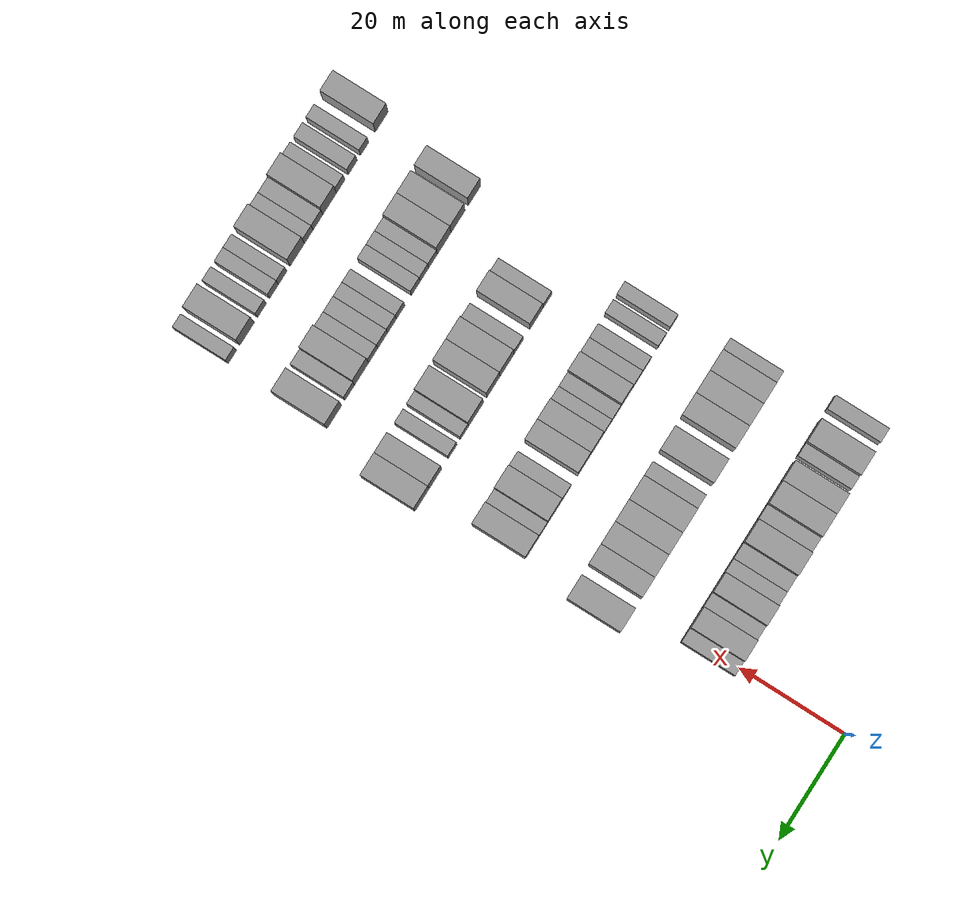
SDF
<sdf version="1.6">
 <world name="default">
  <model name="building_76">
   <static>1</static>
   <pose>25.0000 -43.3283 0 0.000000 0.000000 0.000000</pose>
   <link name="link">
    <pose>0 0 3.00 0 0 0</pose>
    <collision name="collision"><geometry><box><size>10.0000 2.6255 6.0000</size></box></geometry></collision>
    <visual name="visual">
     <cast_shadows>0</cast_shadows>
     <geometry><box><size>10.0000 2.6255 6.0000</size></box></geometry>
     <material>
      <script>
       <uri>model://grey_wall/materials/scripts</uri>
       <uri>model://grey_wall/materials/textures</uri>
       <name>vrc/grey_wall</name>
      </script>
     </material>
    </visual>
   </link>
  </model>
  <model name="building_77">
   <static>1</static>
   <pose>25.0000 -37.8371 0 0.000000 0.000000 0.000000</pose>
   <link name="link">
    <pose>0 0 4.50 0 0 0</pose>
    <collision name="collision"><geometry><box><size>10.0000 4.3570 9.0000</size></box></geometry></collision>
    <visual name="visual">
     <cast_shadows>0</cast_shadows>
     <geometry><box><size>10.0000 4.3570 9.0000</size></box></geometry>
     <material>
      <script>
       <uri>model://grey_wall/materials/scripts</uri>
       <uri>model://grey_wall/materials/textures</uri>
       <name>vrc/grey_wall</name>
      </script>
     </material>
    </visual>
   </link>
  </model>
  <model name="building_78">
   <static>1</static>
   <pose>25.0000 -34.4365 0 0.000000 0.000000 0.000000</pose>
   <link name="link">
    <pose>0 0 3.00 0 0 0</pose>
    <collision name="collision"><geometry><box><size>10.0000 2.4443 6.0000</size></box></geometry></collision>
    <visual name="visual">
     <cast_shadows>0</cast_shadows>
     <geometry><box><size>10.0000 2.4443 6.0000</size></box></geometry>
     <material>
      <script>
       <uri>model://grey_wall/materials/scripts</uri>
       <uri>model://grey_wall/materials/textures</uri>
       <name>vrc/grey_wall</name>
      </script>
     </material>
    </visual>
   </link>
  </model>
  <model name="building_79">
   <static>1</static>
   <pose>25.0000 -30.3261 0 0.000000 0.000000 0.000000</pose>
   <link name="link">
    <pose>0 0 4.50 0 0 0</pose>
    <collision name="collision"><geometry><box><size>10.0000 3.7765 9.0000</size></box></geometry></collision>
    <visual name="visual">
     <cast_shadows>0</cast_shadows>
     <geometry><box><size>10.0000 3.7765 9.0000</size></box></geometry>
     <material>
      <script>
       <uri>model://grey_wall/materials/scripts</uri>
       <uri>model://grey_wall/materials/textures</uri>
       <name>vrc/grey_wall</name>
      </script>
     </material>
    </visual>
   </link>
  </model>
  <model name="building_80">
   <static>1</static>
   <pose>25.0000 -26.3080 0 0.000000 0.000000 0.000000</pose>
   <link name="link">
    <pose>0 0 4.50 0 0 0</pose>
    <collision name="collision"><geometry><box><size>10.0000 4.2597 9.0000</size></box></geometry></collision>
    <visual name="visual">
     <cast_shadows>0</cast_shadows>
     <geometry><box><size>10.0000 4.2597 9.0000</size></box></geometry>
     <material>
      <script>
       <uri>model://grey_wall/materials/scripts</uri>
       <uri>model://grey_wall/materials/textures</uri>
       <name>vrc/grey_wall</name>
      </script>
     </material>
    </visual>
   </link>
  </model>
  <model name="building_81">
   <static>1</static>
   <pose>25.0000 -22.7235 0 0.000000 0.000000 0.000000</pose>
   <link name="link">
    <pose>0 0 3.00 0 0 0</pose>
    <collision name="collision"><geometry><box><size>10.0000 2.9092 6.0000</size></box></geometry></collision>
    <visual name="visual">
     <cast_shadows>0</cast_shadows>
     <geometry><box><size>10.0000 2.9092 6.0000</size></box></geometry>
     <material>
      <script>
       <uri>model://grey_wall/materials/scripts</uri>
       <uri>model://grey_wall/materials/textures</uri>
       <name>vrc/grey_wall</name>
      </script>
     </material>
    </visual>
   </link>
  </model>
  <model name="building_82">
   <static>1</static>
   <pose>25.0000 -19.1239 0 0.000000 0.000000 0.000000</pose>
   <link name="link">
    <pose>0 0 4.50 0 0 0</pose>
    <collision name="collision"><geometry><box><size>10.0000 4.2902 9.0000</size></box></geometry></collision>
    <visual name="visual">
     <cast_shadows>0</cast_shadows>
     <geometry><box><size>10.0000 4.2902 9.0000</size></box></geometry>
     <material>
      <script>
       <uri>model://grey_wall/materials/scripts</uri>
       <uri>model://grey_wall/materials/textures</uri>
       <name>vrc/grey_wall</name>
      </script>
     </material>
    </visual>
   </link>
  </model>
  <model name="building_83">
   <static>1</static>
   <pose>25.0000 -15.4917 0 0.000000 0.000000 0.000000</pose>
   <link name="link">
    <pose>0 0 3.00 0 0 0</pose>
    <collision name="collision"><geometry><box><size>10.0000 2.9742 6.0000</size></box></geometry></collision>
    <visual name="visual">
     <cast_shadows>0</cast_shadows>
     <geometry><box><size>10.0000 2.9742 6.0000</size></box></geometry>
     <material>
      <script>
       <uri>model://grey_wall/materials/scripts</uri>
       <uri>model://grey_wall/materials/textures</uri>
       <name>vrc/grey_wall</name>
      </script>
     </material>
    </visual>
   </link>
  </model>
  <model name="building_84">
   <static>1</static>
   <pose>25.0000 -12.6764 0 0.000000 0.000000 0.000000</pose>
   <link name="link">
    <pose>0 0 3.00 0 0 0</pose>
    <collision name="collision"><geometry><box><size>10.0000 2.6565 6.0000</size></box></geometry></collision>
    <visual name="visual">
     <cast_shadows>0</cast_shadows>
     <geometry><box><size>10.0000 2.6565 6.0000</size></box></geometry>
     <material>
      <script>
       <uri>model://grey_wall/materials/scripts</uri>
       <uri>model://grey_wall/materials/textures</uri>
       <name>vrc/grey_wall</name>
      </script>
     </material>
    </visual>
   </link>
  </model>
  <model name="building_85">
   <static>1</static>
   <pose>25.0000 -9.4962 0 0.000000 0.000000 0.000000</pose>
   <link name="link">
    <pose>0 0 4.50 0 0 0</pose>
    <collision name="collision"><geometry><box><size>10.0000 3.7039 9.0000</size></box></geometry></collision>
    <visual name="visual">
     <cast_shadows>0</cast_shadows>
     <geometry><box><size>10.0000 3.7039 9.0000</size></box></geometry>
     <material>
      <script>
       <uri>model://grey_wall/materials/scripts</uri>
       <uri>model://grey_wall/materials/textures</uri>
       <name>vrc/grey_wall</name>
      </script>
     </material>
    </visual>
   </link>
  </model>
  <model name="building_86">
   <static>1</static>
   <pose>25.0000 -6.2810 0 0.000000 0.000000 0.000000</pose>
   <link name="link">
    <pose>0 0 3.00 0 0 0</pose>
    <collision name="collision"><geometry><box><size>10.0000 2.7266 6.0000</size></box></geometry></collision>
    <visual name="visual">
     <cast_shadows>0</cast_shadows>
     <geometry><box><size>10.0000 2.7266 6.0000</size></box></geometry>
     <material>
      <script>
       <uri>model://grey_wall/materials/scripts</uri>
       <uri>model://grey_wall/materials/textures</uri>
       <name>vrc/grey_wall</name>
      </script>
     </material>
    </visual>
   </link>
  </model>
  <model name="building_87">
   <static>1</static>
   <pose>25.0000 -2.9673 0 0.000000 0.000000 0.000000</pose>
   <link name="link">
    <pose>0 0 4.50 0 0 0</pose>
    <collision name="collision"><geometry><box><size>10.0000 3.9007 9.0000</size></box></geometry></collision>
    <visual name="visual">
     <cast_shadows>0</cast_shadows>
     <geometry><box><size>10.0000 3.9007 9.0000</size></box></geometry>
     <material>
      <script>
       <uri>model://grey_wall/materials/scripts</uri>
       <uri>model://grey_wall/materials/textures</uri>
       <name>vrc/grey_wall</name>
      </script>
     </material>
    </visual>
   </link>
  </model>
  <model name="building_88">
   <static>1</static>
   <pose>25.0000 0.2975 0 0.000000 0.000000 0.000000</pose>
   <link name="link">
    <pose>0 0 3.00 0 0 0</pose>
    <collision name="collision"><geometry><box><size>10.0000 2.6289 6.0000</size></box></geometry></collision>
    <visual name="visual">
     <cast_shadows>0</cast_shadows>
     <geometry><box><size>10.0000 2.6289 6.0000</size></box></geometry>
     <material>
      <script>
       <uri>model://grey_wall/materials/scripts</uri>
       <uri>model://grey_wall/materials/textures</uri>
       <name>vrc/grey_wall</name>
      </script>
     </material>
    </visual>
   </link>
  </model>
  <model name="building_228">
   <static>1</static>
   <pose>44.0000 -42.2456 0 0.000000 0.000000 0.000000</pose>
   <link name="link">
    <pose>0 0 3.00 0 0 0</pose>
    <collision name="collision"><geometry><box><size>10.0000 2.4268 6.0000</size></box></geometry></collision>
    <visual name="visual">
     <cast_shadows>0</cast_shadows>
     <geometry><box><size>10.0000 2.4268 6.0000</size></box></geometry>
     <material>
      <script>
       <uri>model://grey_wall/materials/scripts</uri>
       <uri>model://grey_wall/materials/textures</uri>
       <name>vrc/grey_wall</name>
      </script>
     </material>
    </visual>
   </link>
  </model>
  <model name="building_229">
   <static>1</static>
   <pose>44.0000 -39.0717 0 0.000000 0.000000 0.000000</pose>
   <link name="link">
    <pose>0 0 4.50 0 0 0</pose>
    <collision name="collision"><geometry><box><size>10.0000 3.9209 9.0000</size></box></geometry></collision>
    <visual name="visual">
     <cast_shadows>0</cast_shadows>
     <geometry><box><size>10.0000 3.9209 9.0000</size></box></geometry>
     <material>
      <script>
       <uri>model://grey_wall/materials/scripts</uri>
       <uri>model://grey_wall/materials/textures</uri>
       <name>vrc/grey_wall</name>
      </script>
     </material>
    </visual>
   </link>
  </model>
  <model name="building_230">
   <static>1</static>
   <pose>44.0000 -35.0303 0 0.000000 0.000000 0.000000</pose>
   <link name="link">
    <pose>0 0 4.50 0 0 0</pose>
    <collision name="collision"><geometry><box><size>10.0000 4.1619 9.0000</size></box></geometry></collision>
    <visual name="visual">
     <cast_shadows>0</cast_shadows>
     <geometry><box><size>10.0000 4.1619 9.0000</size></box></geometry>
     <material>
      <script>
       <uri>model://grey_wall/materials/scripts</uri>
       <uri>model://grey_wall/materials/textures</uri>
       <name>vrc/grey_wall</name>
      </script>
     </material>
    </visual>
   </link>
  </model>
  <model name="building_231">
   <static>1</static>
   <pose>44.0000 -30.8508 0 0.000000 0.000000 0.000000</pose>
   <link name="link">
    <pose>0 0 4.50 0 0 0</pose>
    <collision name="collision"><geometry><box><size>10.0000 4.1972 9.0000</size></box></geometry></collision>
    <visual name="visual">
     <cast_shadows>0</cast_shadows>
     <geometry><box><size>10.0000 4.1972 9.0000</size></box></geometry>
     <material>
      <script>
       <uri>model://grey_wall/materials/scripts</uri>
       <uri>model://grey_wall/materials/textures</uri>
       <name>vrc/grey_wall</name>
      </script>
     </material>
    </visual>
   </link>
  </model>
  <model name="building_232">
   <static>1</static>
   <pose>44.0000 -24.5054 0 0.000000 0.000000 0.000000</pose>
   <link name="link">
    <pose>0 0 4.50 0 0 0</pose>
    <collision name="collision"><geometry><box><size>10.0000 4.4937 9.0000</size></box></geometry></collision>
    <visual name="visual">
     <cast_shadows>0</cast_shadows>
     <geometry><box><size>10.0000 4.4937 9.0000</size></box></geometry>
     <material>
      <script>
       <uri>model://grey_wall/materials/scripts</uri>
       <uri>model://grey_wall/materials/textures</uri>
       <name>vrc/grey_wall</name>
      </script>
     </material>
    </visual>
   </link>
  </model>
  <model name="building_233">
   <static>1</static>
   <pose>44.0000 -18.8831 0 0.000000 0.000000 0.000000</pose>
   <link name="link">
    <pose>0 0 3.00 0 0 0</pose>
    <collision name="collision"><geometry><box><size>10.0000 2.7508 6.0000</size></box></geometry></collision>
    <visual name="visual">
     <cast_shadows>0</cast_shadows>
     <geometry><box><size>10.0000 2.7508 6.0000</size></box></geometry>
     <material>
      <script>
       <uri>model://grey_wall/materials/scripts</uri>
       <uri>model://grey_wall/materials/textures</uri>
       <name>vrc/grey_wall</name>
      </script>
     </material>
    </visual>
   </link>
  </model>
  <model name="building_234">
   <static>1</static>
   <pose>44.0000 -15.2633 0 0.000000 0.000000 0.000000</pose>
   <link name="link">
    <pose>0 0 4.50 0 0 0</pose>
    <collision name="collision"><geometry><box><size>10.0000 4.4888 9.0000</size></box></geometry></collision>
    <visual name="visual">
     <cast_shadows>0</cast_shadows>
     <geometry><box><size>10.0000 4.4888 9.0000</size></box></geometry>
     <material>
      <script>
       <uri>model://grey_wall/materials/scripts</uri>
       <uri>model://grey_wall/materials/textures</uri>
       <name>vrc/grey_wall</name>
      </script>
     </material>
    </visual>
   </link>
  </model>
  <model name="building_235">
   <static>1</static>
   <pose>44.0000 -10.9596 0 0.000000 0.000000 0.000000</pose>
   <link name="link">
    <pose>0 0 4.50 0 0 0</pose>
    <collision name="collision"><geometry><box><size>10.0000 4.1185 9.0000</size></box></geometry></collision>
    <visual name="visual">
     <cast_shadows>0</cast_shadows>
     <geometry><box><size>10.0000 4.1185 9.0000</size></box></geometry>
     <material>
      <script>
       <uri>model://grey_wall/materials/scripts</uri>
       <uri>model://grey_wall/materials/textures</uri>
       <name>vrc/grey_wall</name>
      </script>
     </material>
    </visual>
   </link>
  </model>
  <model name="building_236">
   <static>1</static>
   <pose>44.0000 -6.7970 0 0.000000 0.000000 0.000000</pose>
   <link name="link">
    <pose>0 0 4.50 0 0 0</pose>
    <collision name="collision"><geometry><box><size>10.0000 4.2067 9.0000</size></box></geometry></collision>
    <visual name="visual">
     <cast_shadows>0</cast_shadows>
     <geometry><box><size>10.0000 4.2067 9.0000</size></box></geometry>
     <material>
      <script>
       <uri>model://grey_wall/materials/scripts</uri>
       <uri>model://grey_wall/materials/textures</uri>
       <name>vrc/grey_wall</name>
      </script>
     </material>
    </visual>
   </link>
  </model>
  <model name="building_237">
   <static>1</static>
   <pose>44.0000 -2.8311 0 0.000000 0.000000 0.000000</pose>
   <link name="link">
    <pose>0 0 4.50 0 0 0</pose>
    <collision name="collision"><geometry><box><size>10.0000 3.7250 9.0000</size></box></geometry></collision>
    <visual name="visual">
     <cast_shadows>0</cast_shadows>
     <geometry><box><size>10.0000 3.7250 9.0000</size></box></geometry>
     <material>
      <script>
       <uri>model://grey_wall/materials/scripts</uri>
       <uri>model://grey_wall/materials/textures</uri>
       <name>vrc/grey_wall</name>
      </script>
     </material>
    </visual>
   </link>
  </model>
  <model name="building_238">
   <static>1</static>
   <pose>44.0000 3.2646 0 0.000000 0.000000 0.000000</pose>
   <link name="link">
    <pose>0 0 4.50 0 0 0</pose>
    <collision name="collision"><geometry><box><size>10.0000 4.4665 9.0000</size></box></geometry></collision>
    <visual name="visual">
     <cast_shadows>0</cast_shadows>
     <geometry><box><size>10.0000 4.4665 9.0000</size></box></geometry>
     <material>
      <script>
       <uri>model://grey_wall/materials/scripts</uri>
       <uri>model://grey_wall/materials/textures</uri>
       <name>vrc/grey_wall</name>
      </script>
     </material>
    </visual>
   </link>
  </model>
  <model name="building_401">
   <static>1</static>
   <pose>63.0000 -40.9930 0 0.000000 0.000000 0.000000</pose>
   <link name="link">
    <pose>0 0 3.00 0 0 0</pose>
    <collision name="collision"><geometry><box><size>10.0000 2.4286 6.0000</size></box></geometry></collision>
    <visual name="visual">
     <cast_shadows>0</cast_shadows>
     <geometry><box><size>10.0000 2.4286 6.0000</size></box></geometry>
     <material>
      <script>
       <uri>model://grey_wall/materials/scripts</uri>
       <uri>model://grey_wall/materials/textures</uri>
       <name>vrc/grey_wall</name>
      </script>
     </material>
    </visual>
   </link>
  </model>
  <model name="building_402">
   <static>1</static>
   <pose>63.0000 -37.5135 0 0.000000 0.000000 0.000000</pose>
   <link name="link">
    <pose>0 0 3.00 0 0 0</pose>
    <collision name="collision"><geometry><box><size>10.0000 2.5304 6.0000</size></box></geometry></collision>
    <visual name="visual">
     <cast_shadows>0</cast_shadows>
     <geometry><box><size>10.0000 2.5304 6.0000</size></box></geometry>
     <material>
      <script>
       <uri>model://grey_wall/materials/scripts</uri>
       <uri>model://grey_wall/materials/textures</uri>
       <name>vrc/grey_wall</name>
      </script>
     </material>
    </visual>
   </link>
  </model>
  <model name="building_403">
   <static>1</static>
   <pose>63.0000 -32.9405 0 0.000000 0.000000 0.000000</pose>
   <link name="link">
    <pose>0 0 3.00 0 0 0</pose>
    <collision name="collision"><geometry><box><size>10.0000 2.6156 6.0000</size></box></geometry></collision>
    <visual name="visual">
     <cast_shadows>0</cast_shadows>
     <geometry><box><size>10.0000 2.6156 6.0000</size></box></geometry>
     <material>
      <script>
       <uri>model://grey_wall/materials/scripts</uri>
       <uri>model://grey_wall/materials/textures</uri>
       <name>vrc/grey_wall</name>
      </script>
     </material>
    </visual>
   </link>
  </model>
  <model name="building_404">
   <static>1</static>
   <pose>63.0000 -30.1827 0 0.000000 0.000000 0.000000</pose>
   <link name="link">
    <pose>0 0 3.00 0 0 0</pose>
    <collision name="collision"><geometry><box><size>10.0000 2.9001 6.0000</size></box></geometry></collision>
    <visual name="visual">
     <cast_shadows>0</cast_shadows>
     <geometry><box><size>10.0000 2.9001 6.0000</size></box></geometry>
     <material>
      <script>
       <uri>model://grey_wall/materials/scripts</uri>
       <uri>model://grey_wall/materials/textures</uri>
       <name>vrc/grey_wall</name>
      </script>
     </material>
    </visual>
   </link>
  </model>
  <model name="building_405">
   <static>1</static>
   <pose>63.0000 -26.9268 0 0.000000 0.000000 0.000000</pose>
   <link name="link">
    <pose>0 0 4.50 0 0 0</pose>
    <collision name="collision"><geometry><box><size>10.0000 3.6117 9.0000</size></box></geometry></collision>
    <visual name="visual">
     <cast_shadows>0</cast_shadows>
     <geometry><box><size>10.0000 3.6117 9.0000</size></box></geometry>
     <material>
      <script>
       <uri>model://grey_wall/materials/scripts</uri>
       <uri>model://grey_wall/materials/textures</uri>
       <name>vrc/grey_wall</name>
      </script>
     </material>
    </visual>
   </link>
  </model>
  <model name="building_406">
   <static>1</static>
   <pose>63.0000 -23.7881 0 0.000000 0.000000 0.000000</pose>
   <link name="link">
    <pose>0 0 3.00 0 0 0</pose>
    <collision name="collision"><geometry><box><size>10.0000 2.6658 6.0000</size></box></geometry></collision>
    <visual name="visual">
     <cast_shadows>0</cast_shadows>
     <geometry><box><size>10.0000 2.6658 6.0000</size></box></geometry>
     <material>
      <script>
       <uri>model://grey_wall/materials/scripts</uri>
       <uri>model://grey_wall/materials/textures</uri>
       <name>vrc/grey_wall</name>
      </script>
     </material>
    </visual>
   </link>
  </model>
  <model name="building_407">
   <static>1</static>
   <pose>63.0000 -21.1831 0 0.000000 0.000000 0.000000</pose>
   <link name="link">
    <pose>0 0 3.00 0 0 0</pose>
    <collision name="collision"><geometry><box><size>10.0000 2.5441 6.0000</size></box></geometry></collision>
    <visual name="visual">
     <cast_shadows>0</cast_shadows>
     <geometry><box><size>10.0000 2.5441 6.0000</size></box></geometry>
     <material>
      <script>
       <uri>model://grey_wall/materials/scripts</uri>
       <uri>model://grey_wall/materials/textures</uri>
       <name>vrc/grey_wall</name>
      </script>
     </material>
    </visual>
   </link>
  </model>
  <model name="building_408">
   <static>1</static>
   <pose>63.0000 -17.9876 0 0.000000 0.000000 0.000000</pose>
   <link name="link">
    <pose>0 0 4.50 0 0 0</pose>
    <collision name="collision"><geometry><box><size>10.0000 3.8470 9.0000</size></box></geometry></collision>
    <visual name="visual">
     <cast_shadows>0</cast_shadows>
     <geometry><box><size>10.0000 3.8470 9.0000</size></box></geometry>
     <material>
      <script>
       <uri>model://grey_wall/materials/scripts</uri>
       <uri>model://grey_wall/materials/textures</uri>
       <name>vrc/grey_wall</name>
      </script>
     </material>
    </visual>
   </link>
  </model>
  <model name="building_409">
   <static>1</static>
   <pose>63.0000 -14.1528 0 0.000000 0.000000 0.000000</pose>
   <link name="link">
    <pose>0 0 4.50 0 0 0</pose>
    <collision name="collision"><geometry><box><size>10.0000 3.8226 9.0000</size></box></geometry></collision>
    <visual name="visual">
     <cast_shadows>0</cast_shadows>
     <geometry><box><size>10.0000 3.8226 9.0000</size></box></geometry>
     <material>
      <script>
       <uri>model://grey_wall/materials/scripts</uri>
       <uri>model://grey_wall/materials/textures</uri>
       <name>vrc/grey_wall</name>
      </script>
     </material>
    </visual>
   </link>
  </model>
  <model name="building_410">
   <static>1</static>
   <pose>63.0000 -8.8715 0 0.000000 0.000000 0.000000</pose>
   <link name="link">
    <pose>0 0 3.00 0 0 0</pose>
    <collision name="collision"><geometry><box><size>10.0000 2.7399 6.0000</size></box></geometry></collision>
    <visual name="visual">
     <cast_shadows>0</cast_shadows>
     <geometry><box><size>10.0000 2.7399 6.0000</size></box></geometry>
     <material>
      <script>
       <uri>model://grey_wall/materials/scripts</uri>
       <uri>model://grey_wall/materials/textures</uri>
       <name>vrc/grey_wall</name>
      </script>
     </material>
    </visual>
   </link>
  </model>
  <model name="building_411">
   <static>1</static>
   <pose>63.0000 -5.3590 0 0.000000 0.000000 0.000000</pose>
   <link name="link">
    <pose>0 0 4.50 0 0 0</pose>
    <collision name="collision"><geometry><box><size>10.0000 4.2850 9.0000</size></box></geometry></collision>
    <visual name="visual">
     <cast_shadows>0</cast_shadows>
     <geometry><box><size>10.0000 4.2850 9.0000</size></box></geometry>
     <material>
      <script>
       <uri>model://grey_wall/materials/scripts</uri>
       <uri>model://grey_wall/materials/textures</uri>
       <name>vrc/grey_wall</name>
      </script>
     </material>
    </visual>
   </link>
  </model>
  <model name="building_412">
   <static>1</static>
   <pose>63.0000 -1.9066 0 0.000000 0.000000 0.000000</pose>
   <link name="link">
    <pose>0 0 3.00 0 0 0</pose>
    <collision name="collision"><geometry><box><size>10.0000 2.6199 6.0000</size></box></geometry></collision>
    <visual name="visual">
     <cast_shadows>0</cast_shadows>
     <geometry><box><size>10.0000 2.6199 6.0000</size></box></geometry>
     <material>
      <script>
       <uri>model://grey_wall/materials/scripts</uri>
       <uri>model://grey_wall/materials/textures</uri>
       <name>vrc/grey_wall</name>
      </script>
     </material>
    </visual>
   </link>
  </model>
  <model name="building_413">
   <static>1</static>
   <pose>63.0000 1.4347 0 0.000000 0.000000 0.000000</pose>
   <link name="link">
    <pose>0 0 4.50 0 0 0</pose>
    <collision name="collision"><geometry><box><size>10.0000 4.0626 9.0000</size></box></geometry></collision>
    <visual name="visual">
     <cast_shadows>0</cast_shadows>
     <geometry><box><size>10.0000 4.0626 9.0000</size></box></geometry>
     <material>
      <script>
       <uri>model://grey_wall/materials/scripts</uri>
       <uri>model://grey_wall/materials/textures</uri>
       <name>vrc/grey_wall</name>
      </script>
     </material>
    </visual>
   </link>
  </model>
  <model name="building_573">
   <static>1</static>
   <pose>82.0000 -33.3156 0 0.000000 0.000000 0.000000</pose>
   <link name="link">
    <pose>0 0 3.00 0 0 0</pose>
    <collision name="collision"><geometry><box><size>10.0000 2.6793 6.0000</size></box></geometry></collision>
    <visual name="visual">
     <cast_shadows>0</cast_shadows>
     <geometry><box><size>10.0000 2.6793 6.0000</size></box></geometry>
     <material>
      <script>
       <uri>model://grey_wall/materials/scripts</uri>
       <uri>model://grey_wall/materials/textures</uri>
       <name>vrc/grey_wall</name>
      </script>
     </material>
    </visual>
   </link>
  </model>
  <model name="building_574">
   <static>1</static>
   <pose>82.0000 -30.0600 0 0.000000 0.000000 0.000000</pose>
   <link name="link">
    <pose>0 0 4.50 0 0 0</pose>
    <collision name="collision"><geometry><box><size>10.0000 3.8319 9.0000</size></box></geometry></collision>
    <visual name="visual">
     <cast_shadows>0</cast_shadows>
     <geometry><box><size>10.0000 3.8319 9.0000</size></box></geometry>
     <material>
      <script>
       <uri>model://grey_wall/materials/scripts</uri>
       <uri>model://grey_wall/materials/textures</uri>
       <name>vrc/grey_wall</name>
      </script>
     </material>
    </visual>
   </link>
  </model>
  <model name="building_575">
   <static>1</static>
   <pose>82.0000 -24.7283 0 0.000000 0.000000 0.000000</pose>
   <link name="link">
    <pose>0 0 3.00 0 0 0</pose>
    <collision name="collision"><geometry><box><size>10.0000 2.8315 6.0000</size></box></geometry></collision>
    <visual name="visual">
     <cast_shadows>0</cast_shadows>
     <geometry><box><size>10.0000 2.8315 6.0000</size></box></geometry>
     <material>
      <script>
       <uri>model://grey_wall/materials/scripts</uri>
       <uri>model://grey_wall/materials/textures</uri>
       <name>vrc/grey_wall</name>
      </script>
     </material>
    </visual>
   </link>
  </model>
  <model name="building_576">
   <static>1</static>
   <pose>82.0000 -21.2152 0 0.000000 0.000000 0.000000</pose>
   <link name="link">
    <pose>0 0 4.50 0 0 0</pose>
    <collision name="collision"><geometry><box><size>10.0000 4.1946 9.0000</size></box></geometry></collision>
    <visual name="visual">
     <cast_shadows>0</cast_shadows>
     <geometry><box><size>10.0000 4.1946 9.0000</size></box></geometry>
     <material>
      <script>
       <uri>model://grey_wall/materials/scripts</uri>
       <uri>model://grey_wall/materials/textures</uri>
       <name>vrc/grey_wall</name>
      </script>
     </material>
    </visual>
   </link>
  </model>
  <model name="building_577">
   <static>1</static>
   <pose>82.0000 -17.1370 0 0.000000 0.000000 0.000000</pose>
   <link name="link">
    <pose>0 0 4.50 0 0 0</pose>
    <collision name="collision"><geometry><box><size>10.0000 3.9616 9.0000</size></box></geometry></collision>
    <visual name="visual">
     <cast_shadows>0</cast_shadows>
     <geometry><box><size>10.0000 3.9616 9.0000</size></box></geometry>
     <material>
      <script>
       <uri>model://grey_wall/materials/scripts</uri>
       <uri>model://grey_wall/materials/textures</uri>
       <name>vrc/grey_wall</name>
      </script>
     </material>
    </visual>
   </link>
  </model>
  <model name="building_578">
   <static>1</static>
   <pose>82.0000 -11.9134 0 0.000000 0.000000 0.000000</pose>
   <link name="link">
    <pose>0 0 4.50 0 0 0</pose>
    <collision name="collision"><geometry><box><size>10.0000 4.4856 9.0000</size></box></geometry></collision>
    <visual name="visual">
     <cast_shadows>0</cast_shadows>
     <geometry><box><size>10.0000 4.4856 9.0000</size></box></geometry>
     <material>
      <script>
       <uri>model://grey_wall/materials/scripts</uri>
       <uri>model://grey_wall/materials/textures</uri>
       <name>vrc/grey_wall</name>
      </script>
     </material>
    </visual>
   </link>
  </model>
  <model name="building_579">
   <static>1</static>
   <pose>82.0000 -8.4516 0 0.000000 0.000000 0.000000</pose>
   <link name="link">
    <pose>0 0 3.00 0 0 0</pose>
    <collision name="collision"><geometry><box><size>10.0000 2.4379 6.0000</size></box></geometry></collision>
    <visual name="visual">
     <cast_shadows>0</cast_shadows>
     <geometry><box><size>10.0000 2.4379 6.0000</size></box></geometry>
     <material>
      <script>
       <uri>model://grey_wall/materials/scripts</uri>
       <uri>model://grey_wall/materials/textures</uri>
       <name>vrc/grey_wall</name>
      </script>
     </material>
    </visual>
   </link>
  </model>
  <model name="building_580">
   <static>1</static>
   <pose>82.0000 -4.9241 0 0.000000 0.000000 0.000000</pose>
   <link name="link">
    <pose>0 0 3.00 0 0 0</pose>
    <collision name="collision"><geometry><box><size>10.0000 2.6172 6.0000</size></box></geometry></collision>
    <visual name="visual">
     <cast_shadows>0</cast_shadows>
     <geometry><box><size>10.0000 2.6172 6.0000</size></box></geometry>
     <material>
      <script>
       <uri>model://grey_wall/materials/scripts</uri>
       <uri>model://grey_wall/materials/textures</uri>
       <name>vrc/grey_wall</name>
      </script>
     </material>
    </visual>
   </link>
  </model>
  <model name="building_581">
   <static>1</static>
   <pose>82.0000 0.2677 0 0.000000 0.000000 0.000000</pose>
   <link name="link">
    <pose>0 0 4.50 0 0 0</pose>
    <collision name="collision"><geometry><box><size>10.0000 3.7663 9.0000</size></box></geometry></collision>
    <visual name="visual">
     <cast_shadows>0</cast_shadows>
     <geometry><box><size>10.0000 3.7663 9.0000</size></box></geometry>
     <material>
      <script>
       <uri>model://grey_wall/materials/scripts</uri>
       <uri>model://grey_wall/materials/textures</uri>
       <name>vrc/grey_wall</name>
      </script>
     </material>
    </visual>
   </link>
  </model>
  <model name="building_582">
   <static>1</static>
   <pose>82.0000 4.2609 0 0.000000 0.000000 0.000000</pose>
   <link name="link">
    <pose>0 0 4.50 0 0 0</pose>
    <collision name="collision"><geometry><box><size>10.0000 4.2202 9.0000</size></box></geometry></collision>
    <visual name="visual">
     <cast_shadows>0</cast_shadows>
     <geometry><box><size>10.0000 4.2202 9.0000</size></box></geometry>
     <material>
      <script>
       <uri>model://grey_wall/materials/scripts</uri>
       <uri>model://grey_wall/materials/textures</uri>
       <name>vrc/grey_wall</name>
      </script>
     </material>
    </visual>
   </link>
  </model>
  <model name="building_746">
   <static>1</static>
   <pose>101.0000 -41.6679 0 0.000000 0.000000 0.000000</pose>
   <link name="link">
    <pose>0 0 4.50 0 0 0</pose>
    <collision name="collision"><geometry><box><size>10.0000 3.7389 9.0000</size></box></geometry></collision>
    <visual name="visual">
     <cast_shadows>0</cast_shadows>
     <geometry><box><size>10.0000 3.7389 9.0000</size></box></geometry>
     <material>
      <script>
       <uri>model://grey_wall/materials/scripts</uri>
       <uri>model://grey_wall/materials/textures</uri>
       <name>vrc/grey_wall</name>
      </script>
     </material>
    </visual>
   </link>
  </model>
  <model name="building_747">
   <static>1</static>
   <pose>101.0000 -36.6987 0 0.000000 0.000000 0.000000</pose>
   <link name="link">
    <pose>0 0 4.50 0 0 0</pose>
    <collision name="collision"><geometry><box><size>10.0000 4.1995 9.0000</size></box></geometry></collision>
    <visual name="visual">
     <cast_shadows>0</cast_shadows>
     <geometry><box><size>10.0000 4.1995 9.0000</size></box></geometry>
     <material>
      <script>
       <uri>model://grey_wall/materials/scripts</uri>
       <uri>model://grey_wall/materials/textures</uri>
       <name>vrc/grey_wall</name>
      </script>
     </material>
    </visual>
   </link>
  </model>
  <model name="building_748">
   <static>1</static>
   <pose>101.0000 -32.5332 0 0.000000 0.000000 0.000000</pose>
   <link name="link">
    <pose>0 0 4.50 0 0 0</pose>
    <collision name="collision"><geometry><box><size>10.0000 4.1314 9.0000</size></box></geometry></collision>
    <visual name="visual">
     <cast_shadows>0</cast_shadows>
     <geometry><box><size>10.0000 4.1314 9.0000</size></box></geometry>
     <material>
      <script>
       <uri>model://grey_wall/materials/scripts</uri>
       <uri>model://grey_wall/materials/textures</uri>
       <name>vrc/grey_wall</name>
      </script>
     </material>
    </visual>
   </link>
  </model>
  <model name="building_749">
   <static>1</static>
   <pose>101.0000 -29.1732 0 0.000000 0.000000 0.000000</pose>
   <link name="link">
    <pose>0 0 3.00 0 0 0</pose>
    <collision name="collision"><geometry><box><size>10.0000 2.5886 6.0000</size></box></geometry></collision>
    <visual name="visual">
     <cast_shadows>0</cast_shadows>
     <geometry><box><size>10.0000 2.5886 6.0000</size></box></geometry>
     <material>
      <script>
       <uri>model://grey_wall/materials/scripts</uri>
       <uri>model://grey_wall/materials/textures</uri>
       <name>vrc/grey_wall</name>
      </script>
     </material>
    </visual>
   </link>
  </model>
  <model name="building_750">
   <static>1</static>
   <pose>101.0000 -26.5993 0 0.000000 0.000000 0.000000</pose>
   <link name="link">
    <pose>0 0 3.00 0 0 0</pose>
    <collision name="collision"><geometry><box><size>10.0000 2.5591 6.0000</size></box></geometry></collision>
    <visual name="visual">
     <cast_shadows>0</cast_shadows>
     <geometry><box><size>10.0000 2.5591 6.0000</size></box></geometry>
     <material>
      <script>
       <uri>model://grey_wall/materials/scripts</uri>
       <uri>model://grey_wall/materials/textures</uri>
       <name>vrc/grey_wall</name>
      </script>
     </material>
    </visual>
   </link>
  </model>
  <model name="building_751">
   <static>1</static>
   <pose>101.0000 -23.9947 0 0.000000 0.000000 0.000000</pose>
   <link name="link">
    <pose>0 0 3.00 0 0 0</pose>
    <collision name="collision"><geometry><box><size>10.0000 2.6501 6.0000</size></box></geometry></collision>
    <visual name="visual">
     <cast_shadows>0</cast_shadows>
     <geometry><box><size>10.0000 2.6501 6.0000</size></box></geometry>
     <material>
      <script>
       <uri>model://grey_wall/materials/scripts</uri>
       <uri>model://grey_wall/materials/textures</uri>
       <name>vrc/grey_wall</name>
      </script>
     </material>
    </visual>
   </link>
  </model>
  <model name="building_752">
   <static>1</static>
   <pose>101.0000 -19.4148 0 0.000000 0.000000 0.000000</pose>
   <link name="link">
    <pose>0 0 3.00 0 0 0</pose>
    <collision name="collision"><geometry><box><size>10.0000 2.5098 6.0000</size></box></geometry></collision>
    <visual name="visual">
     <cast_shadows>0</cast_shadows>
     <geometry><box><size>10.0000 2.5098 6.0000</size></box></geometry>
     <material>
      <script>
       <uri>model://grey_wall/materials/scripts</uri>
       <uri>model://grey_wall/materials/textures</uri>
       <name>vrc/grey_wall</name>
      </script>
     </material>
    </visual>
   </link>
  </model>
  <model name="building_753">
   <static>1</static>
   <pose>101.0000 -16.8417 0 0.000000 0.000000 0.000000</pose>
   <link name="link">
    <pose>0 0 3.00 0 0 0</pose>
    <collision name="collision"><geometry><box><size>10.0000 2.6364 6.0000</size></box></geometry></collision>
    <visual name="visual">
     <cast_shadows>0</cast_shadows>
     <geometry><box><size>10.0000 2.6364 6.0000</size></box></geometry>
     <material>
      <script>
       <uri>model://grey_wall/materials/scripts</uri>
       <uri>model://grey_wall/materials/textures</uri>
       <name>vrc/grey_wall</name>
      </script>
     </material>
    </visual>
   </link>
  </model>
  <model name="building_754">
   <static>1</static>
   <pose>101.0000 -14.0508 0 0.000000 0.000000 0.000000</pose>
   <link name="link">
    <pose>0 0 3.00 0 0 0</pose>
    <collision name="collision"><geometry><box><size>10.0000 2.9453 6.0000</size></box></geometry></collision>
    <visual name="visual">
     <cast_shadows>0</cast_shadows>
     <geometry><box><size>10.0000 2.9453 6.0000</size></box></geometry>
     <material>
      <script>
       <uri>model://grey_wall/materials/scripts</uri>
       <uri>model://grey_wall/materials/textures</uri>
       <name>vrc/grey_wall</name>
      </script>
     </material>
    </visual>
   </link>
  </model>
  <model name="building_755">
   <static>1</static>
   <pose>101.0000 -11.1760 0 0.000000 0.000000 0.000000</pose>
   <link name="link">
    <pose>0 0 3.00 0 0 0</pose>
    <collision name="collision"><geometry><box><size>10.0000 2.8043 6.0000</size></box></geometry></collision>
    <visual name="visual">
     <cast_shadows>0</cast_shadows>
     <geometry><box><size>10.0000 2.8043 6.0000</size></box></geometry>
     <material>
      <script>
       <uri>model://grey_wall/materials/scripts</uri>
       <uri>model://grey_wall/materials/textures</uri>
       <name>vrc/grey_wall</name>
      </script>
     </material>
    </visual>
   </link>
  </model>
  <model name="building_756">
   <static>1</static>
   <pose>101.0000 -7.6848 0 0.000000 0.000000 0.000000</pose>
   <link name="link">
    <pose>0 0 4.50 0 0 0</pose>
    <collision name="collision"><geometry><box><size>10.0000 4.1781 9.0000</size></box></geometry></collision>
    <visual name="visual">
     <cast_shadows>0</cast_shadows>
     <geometry><box><size>10.0000 4.1781 9.0000</size></box></geometry>
     <material>
      <script>
       <uri>model://grey_wall/materials/scripts</uri>
       <uri>model://grey_wall/materials/textures</uri>
       <name>vrc/grey_wall</name>
      </script>
     </material>
    </visual>
   </link>
  </model>
  <model name="building_757">
   <static>1</static>
   <pose>101.0000 -4.1655 0 0.000000 0.000000 0.000000</pose>
   <link name="link">
    <pose>0 0 3.00 0 0 0</pose>
    <collision name="collision"><geometry><box><size>10.0000 2.8604 6.0000</size></box></geometry></collision>
    <visual name="visual">
     <cast_shadows>0</cast_shadows>
     <geometry><box><size>10.0000 2.8604 6.0000</size></box></geometry>
     <material>
      <script>
       <uri>model://grey_wall/materials/scripts</uri>
       <uri>model://grey_wall/materials/textures</uri>
       <name>vrc/grey_wall</name>
      </script>
     </material>
    </visual>
   </link>
  </model>
  <model name="building_758">
   <static>1</static>
   <pose>101.0000 0.4440 0 0.000000 0.000000 0.000000</pose>
   <link name="link">
    <pose>0 0 4.50 0 0 0</pose>
    <collision name="collision"><geometry><box><size>10.0000 4.3586 9.0000</size></box></geometry></collision>
    <visual name="visual">
     <cast_shadows>0</cast_shadows>
     <geometry><box><size>10.0000 4.3586 9.0000</size></box></geometry>
     <material>
      <script>
       <uri>model://grey_wall/materials/scripts</uri>
       <uri>model://grey_wall/materials/textures</uri>
       <name>vrc/grey_wall</name>
      </script>
     </material>
    </visual>
   </link>
  </model>
  <model name="building_918">
   <static>1</static>
   <pose>120.0000 -43.8256 0 0.000000 0.000000 0.000000</pose>
   <link name="link">
    <pose>0 0 4.50 0 0 0</pose>
    <collision name="collision"><geometry><box><size>10.0000 3.8706 9.0000</size></box></geometry></collision>
    <visual name="visual">
     <cast_shadows>0</cast_shadows>
     <geometry><box><size>10.0000 3.8706 9.0000</size></box></geometry>
     <material>
      <script>
       <uri>model://grey_wall/materials/scripts</uri>
       <uri>model://grey_wall/materials/textures</uri>
       <name>vrc/grey_wall</name>
      </script>
     </material>
    </visual>
   </link>
  </model>
  <model name="building_919">
   <static>1</static>
   <pose>120.0000 -38.6626 0 0.000000 0.000000 0.000000</pose>
   <link name="link">
    <pose>0 0 3.00 0 0 0</pose>
    <collision name="collision"><geometry><box><size>10.0000 2.4554 6.0000</size></box></geometry></collision>
    <visual name="visual">
     <cast_shadows>0</cast_shadows>
     <geometry><box><size>10.0000 2.4554 6.0000</size></box></geometry>
     <material>
      <script>
       <uri>model://grey_wall/materials/scripts</uri>
       <uri>model://grey_wall/materials/textures</uri>
       <name>vrc/grey_wall</name>
      </script>
     </material>
    </visual>
   </link>
  </model>
  <model name="building_920">
   <static>1</static>
   <pose>120.0000 -35.0886 0 0.000000 0.000000 0.000000</pose>
   <link name="link">
    <pose>0 0 3.00 0 0 0</pose>
    <collision name="collision"><geometry><box><size>10.0000 2.6927 6.0000</size></box></geometry></collision>
    <visual name="visual">
     <cast_shadows>0</cast_shadows>
     <geometry><box><size>10.0000 2.6927 6.0000</size></box></geometry>
     <material>
      <script>
       <uri>model://grey_wall/materials/scripts</uri>
       <uri>model://grey_wall/materials/textures</uri>
       <name>vrc/grey_wall</name>
      </script>
     </material>
    </visual>
   </link>
  </model>
  <model name="building_921">
   <static>1</static>
   <pose>120.0000 -31.4763 0 0.000000 0.000000 0.000000</pose>
   <link name="link">
    <pose>0 0 3.00 0 0 0</pose>
    <collision name="collision"><geometry><box><size>10.0000 2.5318 6.0000</size></box></geometry></collision>
    <visual name="visual">
     <cast_shadows>0</cast_shadows>
     <geometry><box><size>10.0000 2.5318 6.0000</size></box></geometry>
     <material>
      <script>
       <uri>model://grey_wall/materials/scripts</uri>
       <uri>model://grey_wall/materials/textures</uri>
       <name>vrc/grey_wall</name>
      </script>
     </material>
    </visual>
   </link>
  </model>
  <model name="building_922">
   <static>1</static>
   <pose>120.0000 -28.1613 0 0.000000 0.000000 0.000000</pose>
   <link name="link">
    <pose>0 0 4.50 0 0 0</pose>
    <collision name="collision"><geometry><box><size>10.0000 4.0983 9.0000</size></box></geometry></collision>
    <visual name="visual">
     <cast_shadows>0</cast_shadows>
     <geometry><box><size>10.0000 4.0983 9.0000</size></box></geometry>
     <material>
      <script>
       <uri>model://grey_wall/materials/scripts</uri>
       <uri>model://grey_wall/materials/textures</uri>
       <name>vrc/grey_wall</name>
      </script>
     </material>
    </visual>
   </link>
  </model>
  <model name="building_923">
   <static>1</static>
   <pose>120.0000 -24.6442 0 0.000000 0.000000 0.000000</pose>
   <link name="link">
    <pose>0 0 3.00 0 0 0</pose>
    <collision name="collision"><geometry><box><size>10.0000 2.9359 6.0000</size></box></geometry></collision>
    <visual name="visual">
     <cast_shadows>0</cast_shadows>
     <geometry><box><size>10.0000 2.9359 6.0000</size></box></geometry>
     <material>
      <script>
       <uri>model://grey_wall/materials/scripts</uri>
       <uri>model://grey_wall/materials/textures</uri>
       <name>vrc/grey_wall</name>
      </script>
     </material>
    </visual>
   </link>
  </model>
  <model name="building_924">
   <static>1</static>
   <pose>120.0000 -21.8873 0 0.000000 0.000000 0.000000</pose>
   <link name="link">
    <pose>0 0 3.00 0 0 0</pose>
    <collision name="collision"><geometry><box><size>10.0000 2.5778 6.0000</size></box></geometry></collision>
    <visual name="visual">
     <cast_shadows>0</cast_shadows>
     <geometry><box><size>10.0000 2.5778 6.0000</size></box></geometry>
     <material>
      <script>
       <uri>model://grey_wall/materials/scripts</uri>
       <uri>model://grey_wall/materials/textures</uri>
       <name>vrc/grey_wall</name>
      </script>
     </material>
    </visual>
   </link>
  </model>
  <model name="building_925">
   <static>1</static>
   <pose>120.0000 -18.4610 0 0.000000 0.000000 0.000000</pose>
   <link name="link">
    <pose>0 0 4.50 0 0 0</pose>
    <collision name="collision"><geometry><box><size>10.0000 4.2748 9.0000</size></box></geometry></collision>
    <visual name="visual">
     <cast_shadows>0</cast_shadows>
     <geometry><box><size>10.0000 4.2748 9.0000</size></box></geometry>
     <material>
      <script>
       <uri>model://grey_wall/materials/scripts</uri>
       <uri>model://grey_wall/materials/textures</uri>
       <name>vrc/grey_wall</name>
      </script>
     </material>
    </visual>
   </link>
  </model>
  <model name="building_926">
   <static>1</static>
   <pose>120.0000 -14.0644 0 0.000000 0.000000 0.000000</pose>
   <link name="link">
    <pose>0 0 3.00 0 0 0</pose>
    <collision name="collision"><geometry><box><size>10.0000 2.5184 6.0000</size></box></geometry></collision>
    <visual name="visual">
     <cast_shadows>0</cast_shadows>
     <geometry><box><size>10.0000 2.5184 6.0000</size></box></geometry>
     <material>
      <script>
       <uri>model://grey_wall/materials/scripts</uri>
       <uri>model://grey_wall/materials/textures</uri>
       <name>vrc/grey_wall</name>
      </script>
     </material>
    </visual>
   </link>
  </model>
  <model name="building_927">
   <static>1</static>
   <pose>120.0000 -11.4863 0 0.000000 0.000000 0.000000</pose>
   <link name="link">
    <pose>0 0 3.00 0 0 0</pose>
    <collision name="collision"><geometry><box><size>10.0000 2.6377 6.0000</size></box></geometry></collision>
    <visual name="visual">
     <cast_shadows>0</cast_shadows>
     <geometry><box><size>10.0000 2.6377 6.0000</size></box></geometry>
     <material>
      <script>
       <uri>model://grey_wall/materials/scripts</uri>
       <uri>model://grey_wall/materials/textures</uri>
       <name>vrc/grey_wall</name>
      </script>
     </material>
    </visual>
   </link>
  </model>
  <model name="building_928">
   <static>1</static>
   <pose>120.0000 -7.8651 0 0.000000 0.000000 0.000000</pose>
   <link name="link">
    <pose>0 0 3.00 0 0 0</pose>
    <collision name="collision"><geometry><box><size>10.0000 2.6047 6.0000</size></box></geometry></collision>
    <visual name="visual">
     <cast_shadows>0</cast_shadows>
     <geometry><box><size>10.0000 2.6047 6.0000</size></box></geometry>
     <material>
      <script>
       <uri>model://grey_wall/materials/scripts</uri>
       <uri>model://grey_wall/materials/textures</uri>
       <name>vrc/grey_wall</name>
      </script>
     </material>
    </visual>
   </link>
  </model>
  <model name="building_929">
   <static>1</static>
   <pose>120.0000 -3.4056 0 0.000000 0.000000 0.000000</pose>
   <link name="link">
    <pose>0 0 4.50 0 0 0</pose>
    <collision name="collision"><geometry><box><size>10.0000 4.3143 9.0000</size></box></geometry></collision>
    <visual name="visual">
     <cast_shadows>0</cast_shadows>
     <geometry><box><size>10.0000 4.3143 9.0000</size></box></geometry>
     <material>
      <script>
       <uri>model://grey_wall/materials/scripts</uri>
       <uri>model://grey_wall/materials/textures</uri>
       <name>vrc/grey_wall</name>
      </script>
     </material>
    </visual>
   </link>
  </model>
  <model name="building_930">
   <static>1</static>
   <pose>120.0000 0.9845 0 0.000000 0.000000 0.000000</pose>
   <link name="link">
    <pose>0 0 3.00 0 0 0</pose>
    <collision name="collision"><geometry><box><size>10.0000 2.4660 6.0000</size></box></geometry></collision>
    <visual name="visual">
     <cast_shadows>0</cast_shadows>
     <geometry><box><size>10.0000 2.4660 6.0000</size></box></geometry>
     <material>
      <script>
       <uri>model://grey_wall/materials/scripts</uri>
       <uri>model://grey_wall/materials/textures</uri>
       <name>vrc/grey_wall</name>
      </script>
     </material>
    </visual>
   </link>
  </model>
 </world>
</sdf>
